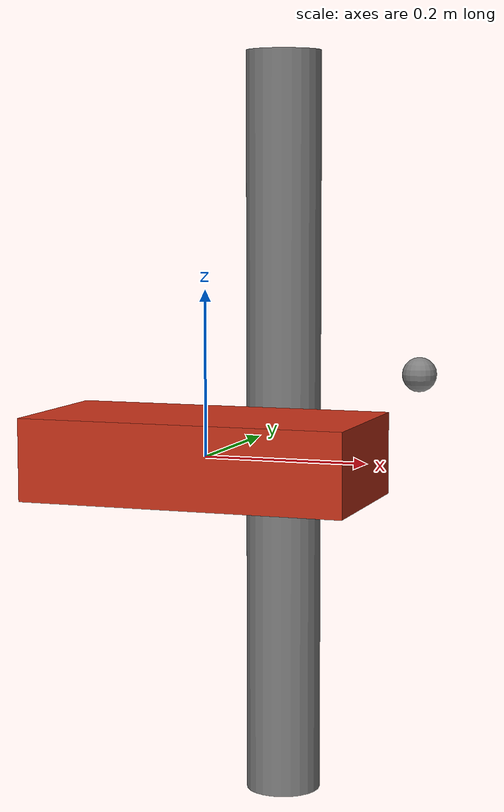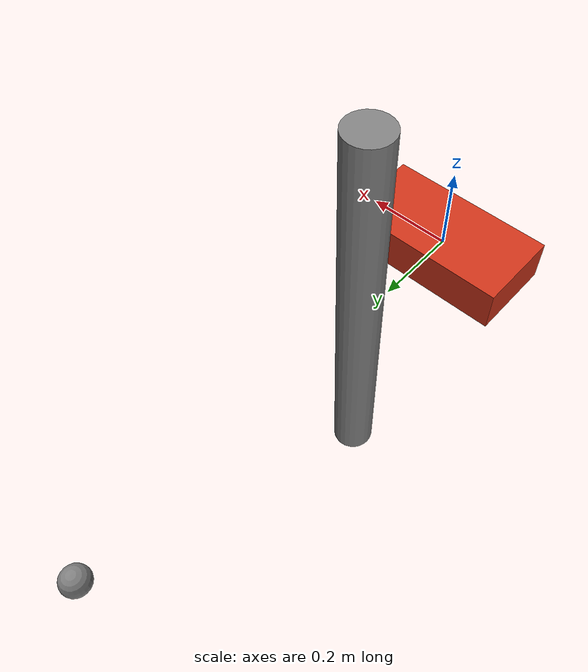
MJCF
<?xml version="1.0"?>
<mujoco model="two_link_arm">
  <compiler angle="radian"/>
  <worldbody>
    <body name="base_link">
      <geom type="box" size="0.2 0.1 0.05" rgba="0.8 0.2 0.1 1"/>
      <body name="upper_link" pos="0 0.05 0">
        <joint name="shoulder" type="hinge" axis="0 0 1" range="-3.14 3.14"/>
        <geom type="cylinder" size="0.05 0.5" pos="0 0.25 0"/>
        <body name="tip_link" pos="0 0.5 0">
          <joint name="elbow" type="hinge" axis="0 0 1" range="-1.57 1.57"/>
          <geom type="sphere" size="0.03" pos="0 0.5 0"/>
        </body>
      </body>
    </body>
  </worldbody>
</mujoco>
